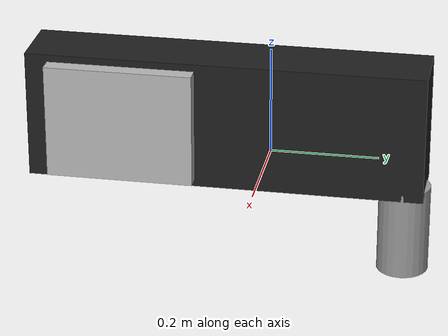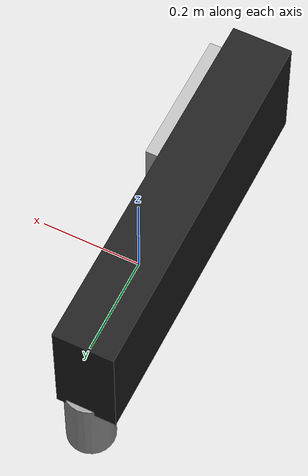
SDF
<?xml version='1.0'?>
<sdf version='1.7'>
  <model name='traffic_light_2'>
    <link name='link_0'>
      <inertial>
        <mass>0.0221441</mass>
        <inertia>
          <ixx>0.00113117</ixx>
          <ixy>0</ixy>
          <ixz>0</ixz>
          <iyy>0.000137192</iyy>
          <iyz>0</iyz>
          <izz>0.00104885</izz>
        </inertia>
        <pose>0 0 0 0 -0 0</pose>
      </inertial>
      <pose>-0.034548 -0.084737 0.049326 0 -0 0</pose>
      <visual name='visual'>
        <pose>0 0 0 0 -0 0</pose>
        <geometry>
          <box>
            <size>0.121937 0.743981 0.243877</size>
          </box>
        </geometry>
        <material>
          <lighting>1</lighting>
          <script>
            <uri>file://media/materials/scripts/gazebo.material</uri>
            <name>Gazebo/Black</name>
          </script>
          <shader type='pixel'/>
          <emissive>0 0 0 1</emissive>
        </material>
        <transparency>0</transparency>
        <cast_shadows>1</cast_shadows>
      </visual>
      <collision name='collision'>
        <laser_retro>0</laser_retro>
        <max_contacts>10</max_contacts>
        <pose>0 0 0 0 -0 0</pose>
        <geometry>
          <box>
            <size>0.121937 0.743981 0.243877</size>
          </box>
        </geometry>

      </collision>
    </link>
    <link name='link_1'>
      <inertial>
        <mass>0.00190017</mass>
        <inertia>
          <ixx>1.948e-05</ixx>
          <ixy>0</ixy>
          <ixz>0</ixz>
          <iyy>7.59e-06</iyy>
          <iyz>0</iyz>
          <izz>1.221e-05</izz>
        </inertia>
        <pose>0 0 0 0 -0 0</pose>
      </inertial>
      <pose>0.039105 -0.276538 0.049326 0 -0 0</pose>
      <gravity>1</gravity>
      <self_collide>0</self_collide>
      <kinematic>0</kinematic>
      <enable_wind>0</enable_wind>
      <visual name='visual'>
        <pose>0 0 0 0 -0 0</pose>
        <geometry>
          <box>
            <size>0.031832 0.275892 0.216628</size>
          </box>
        </geometry>
        <plugin name='blink' filename='libBlinkVisualPlugin.so'>
          <color_a>0 1 0 1</color_a>
          <color_b>1 0 0 1</color_b>
          <period>10</period>
        </plugin>
        <transparency>0</transparency>
        <cast_shadows>1</cast_shadows>
      </visual>
      <collision name='collision'>
        <laser_retro>0</laser_retro>
        <max_contacts>10</max_contacts>
        <pose>0 0 0 0 -0 0</pose>
        <geometry>
          <box>
            <size>0.031832 0.275892 0.216628</size>
          </box>
        </geometry>
      </collision>
    </link>
    <link name='link_2'>
      <inertial>
        <mass>0.00159248</mass>
        <inertia>
          <ixx>4.7417e-06</ixx>
          <ixy>0</ixy>
          <ixz>0</ixz>
          <iyy>4.7417e-06</iyy>
          <iyz>0</iyz>
          <izz>1.86817e-06</izz>
        </inertia>
        <pose>0 0 0 0 -0 0</pose>
      </inertial>
      <pose>-0.021688 0.249252 -0.1452 0 -0 0</pose>
      <visual name='visual'>
        <pose>0 0 0 0 -0 0</pose>
        <geometry>
          <cylinder>
            <radius>0.0484379</radius>
            <length>0.169387</length>
          </cylinder>
        </geometry>
        <material>
          <lighting>1</lighting>
          <script>
            <uri>file://media/materials/scripts/gazebo.material</uri>
            <name>Gazebo/Grey</name>
          </script>
          <shader type='pixel'/>
        </material>
        <transparency>0</transparency>
        <cast_shadows>1</cast_shadows>
      </visual>
      <collision name='collision'>
        <laser_retro>0</laser_retro>
        <max_contacts>10</max_contacts>
        <pose>0 0 0 0 -0 0</pose>
        <geometry>
          <cylinder>
            <radius>0.048438</radius>
            <length>0.169387</length>
          </cylinder>
        </geometry>
      </collision>
    </link>
    <joint name='link_0_JOINT_0' type='fixed'>
      <parent>link_0</parent>
      <child>link_1</child>
      <pose>0 0 0 0 -0 0</pose>

    </joint>
    <joint name='link_0_JOINT_1' type='fixed'>
      <parent>link_0</parent>
      <child>link_1_clone</child>
      <pose>0 0 0 0 -0 0</pose>

    </joint>
    <static>1</static>
    <allow_auto_disable>1</allow_auto_disable>
  </model>
</sdf>
